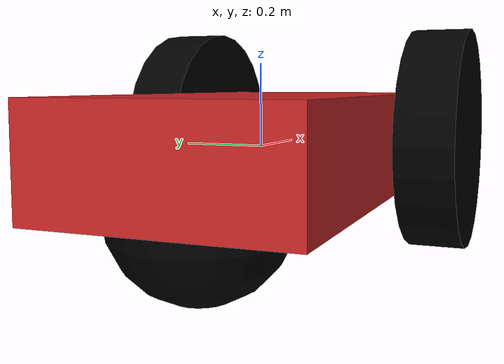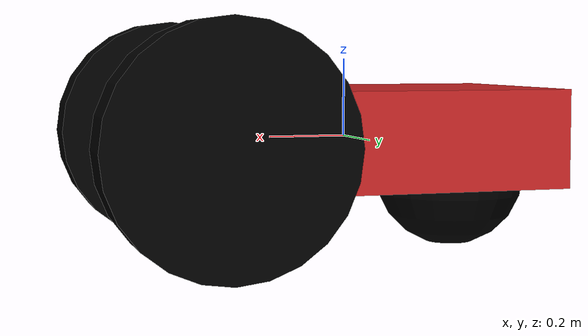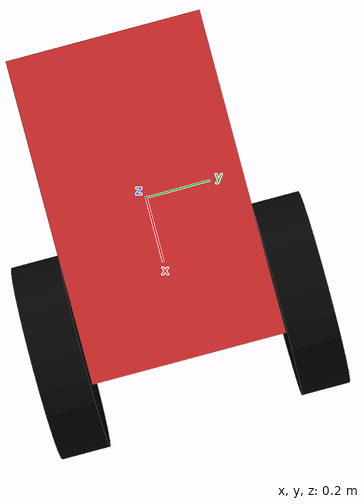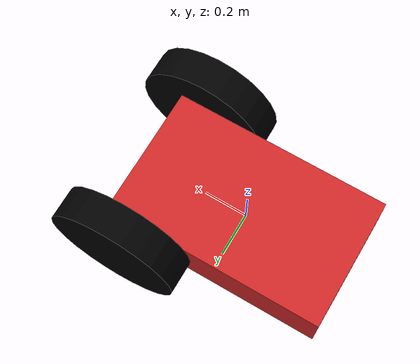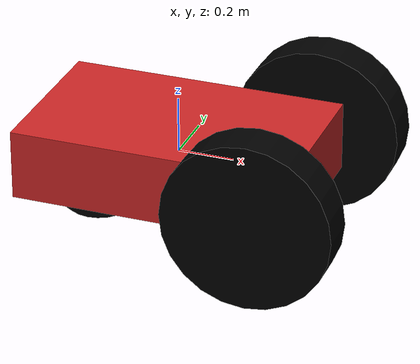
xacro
<?xml version="1.0"?>
<robot xmlns:xacro="http://www.ros.org/wiki/xacro" name="robot">

    <!-- ##### PLUGINS ##### -->

    <gazebo>
        <plugin name="gazebo_ros_control" filename="libgazebo_ros_control.so">
            <robotNamespace>/robot</robotNamespace>
        </plugin>
    </gazebo>

    <!-- ##### INCLUDES ##### -->
    <xacro:include filename="$(find robot_description)/urdf/extras/variables.xacro"/>
    <xacro:include filename="$(find robot_description)/urdf/extras/inertias.xacro"/>
    <xacro:include filename="$(find robot_description)/urdf/extras/components.xacro"/>
    <xacro:include filename="$(find robot_description)/urdf/elements/wheel.xacro"/>

    <!-- ##### LINKS ##### -->

    <link name="base_link">
        <inertial>
            <origin xyz="0.0 0.0 0.0" rpy="0.0 0.0 0.0"/>
            <xacro:box_inertia m="3.0" x="1.0" y="0.25" z="0.6"/>
        </inertial>
        <visual>
            <origin xyz="0.0 0.0 0.0" rpy="0.0 0.0 0.0"/>
            <geometry>
                <box size="1.0 0.6 0.25"/>
                <material name="red"/>
            </geometry>
        </visual>
        <collision>
            <origin xyz="0.0 0.0 0.0" rpy="0.0 0.0 0.0"/>
            <geometry>
                <box size="1.0 0.6 0.25"/>
            </geometry>
        </collision>
    </link>

    <gazebo reference="base_link">
        <material>Gazebo/Red</material>
    </gazebo>

    <!-- ##### WHEELS ##### -->

    <xacro:wheel suffix="FL" parent="base_link" reflectX="1" reflectY="1"/>
    <xacro:wheel suffix="FR" parent="base_link" reflectX="1" reflectY="-1"/>
]

    <xacro:wheel_fixed parent="base_link"/>

</robot>

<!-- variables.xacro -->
<robot xmlns:xacro="http://www.ros.org/wiki/xacro">
    <xacro:property name="M_PI" value="3.14159226535"/>

    <!-- ##### COLORS ##### -->

    <material name="black">
        <color rgba="0.0 0.0 0.0 1.0"/>
    </material>

    <material name="red">
        <color rgba="1.0 0.0 0.0 1.0"/>
    </material>

</robot>

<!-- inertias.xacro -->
<robot xmlns:xacro="http://www.ros.org/wiki/xacro">

    <xacro:macro name="cylinder_inertia" params="m r h">
        <mass value="${m}"/>
        <inertia  ixx="${m*(3*r*r+h*h)/12}" ixy = "0" ixz = "0"
        iyy="${m*(3*r*r+h*h)/12}" iyz = "0"
        izz="${m*r*r/2}"
        />
    </xacro:macro>

    <xacro:macro name="box_inertia" params="m x y z">
        <mass value="${m}"/>
        <inertia  ixx="${m*(y*y+z*z)/12}" ixy = "0" ixz = "0"
        iyy="${m*(x*x+z*z)/12}" iyz = "0"
        izz="${m*(x*x+z*z)/12}"
        />
    </xacro:macro>

    <xacro:macro name="sphere_inertia" params="m r">
        <mass value="${m}"/>
        <inertia  ixx="${2*m*r*r/5}" ixy = "0" ixz = "0"
        iyy="${2*m*r*r/5}" iyz = "0"
        izz="${2*m*r*r/5}"
        />
    </xacro:macro>

</robot>

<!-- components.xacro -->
<robot xmlns:xacro="http://www.ros.org/wiki/xacro">
    <xacro:macro name="wheel_fixed" params="parent">

        <link name="wheel_fixed">
            <inertial>
                <xacro:sphere_inertia m="0.4" r="0.2"/>
            </inertial>
            <visual>
                <geometry>
                    <sphere radius="0.2"/>
                </geometry>
                <material name="black"/>
            </visual>
            <collision>
                <geometry>
                    <sphere radius="0.2"/>
                </geometry>
            </collision>
        </link>

        <joint name="wheel_fixed_joint" type="fixed">
            <parent link="${parent}"/>
            <child link="wheel_fixed"/>
            <origin xyz="-0.3 0.0 -0.1" rpy="0.0 0.0 0.0"/>
        </joint>

    </xacro:macro>
</robot>

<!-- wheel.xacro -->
<robot xmlns:xacro="http://www.ros.org/wiki/xacro">

    <xacro:macro name="wheel" params="suffix parent reflectX reflectY">
        <link name="wheel${suffix}_link">
            <inertial>
                <xacro:cylinder_inertia m="0.5" r="0.3" h="0.15"/>
            </inertial>
            <visual>
                <geometry>
                    <cylinder radius="0.3" length="0.15"/>
                </geometry>
                <material name="black"/>
            </visual>
            <collision>
                <geometry>
                    <cylinder radius="0.3" length="0.15"/>
                </geometry>
            </collision>
        </link>

        <joint name="wheel${suffix}_joint" type="continuous">
            <parent link="${parent}"/>
            <child link="wheel${suffix}_link"/>
            <axis xyz="0 0 1"/>
            <origin xyz="${0.4*reflectX} ${0.375*reflectY} 0" rpy="${M_PI/2} 0 0"/>
        </joint>

        <transmission name="wheel${suffix}_trans">
            <type>transmission_interface/SimpleTransmission</type>
            <joint name="wheel${suffix}_joint">
                <hardwareInterface>hardware_interface/VelocityJointInterface</hardwareInterface>
            </joint>
            <actuator name="wheel${suffix}_motor">
                <hardwareInterface>hardware_interface/VelocityJointInterface</hardwareInterface>
                <mechanicalReduction>1</mechanicalReduction>
            </actuator>
        </transmission>

        <gazebo reference="wheel${suffix}_link">
            <material>Gazebo/Black</material>
        </gazebo>

    </xacro:macro>

</robot>
